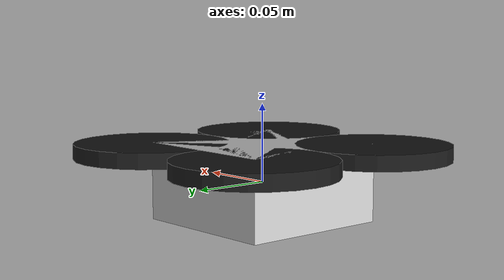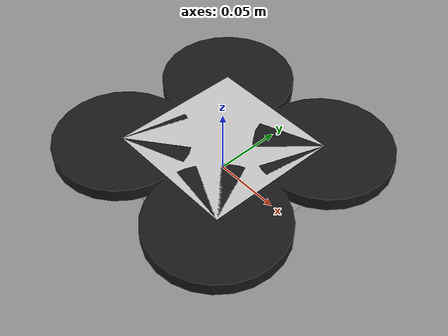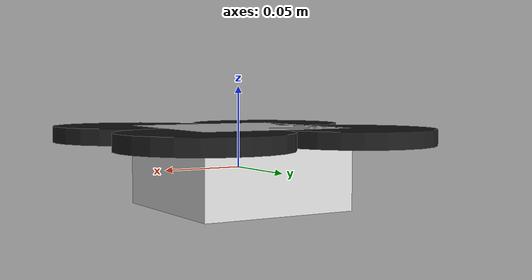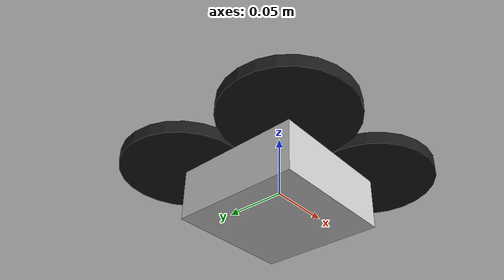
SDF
<?xml version='1.0'?>
<sdf version='1.8'>
  <model name='tello'>
    <!-- Base link (drone body) -->
    <link name='base_link'>
      <!-- Inertial properties (approximate Tello mass: 80g) -->
      <inertial>
        <mass>0.08</mass>
        <inertia>
          <ixx>0.001</ixx>
          <ixy>0</ixy>
          <ixz>0</ixz>
          <iyy>0.001</iyy>
          <iyz>0</iyz>
          <izz>0.001</izz>
        </inertia>
      </inertial>

      <!-- Collision geometry -->
      <collision name='base_collision'>
        <geometry>
          <box>
            <size>0.1 0.1 0.05</size>
          </box>
        </geometry>
      </collision>

      <!-- Visual geometry -->
      <visual name='base_visual'>
        <geometry>
          <box>
            <size>0.1 0.1 0.05</size> <!--use simple geometry first-->
          </box>
        </geometry>
        <material>
          <ambient>0.8 0.8 0.8 1</ambient>
          <diffuse>0.8 0.8 0.8 1</diffuse>
          <specular>0.5 0.5 0.5 1</specular>
        </material>
      </visual>

      <!-- Camera sensor (for inventory scanning) -->
      <sensor name='camera' type='camera'>
        <camera>
          <horizontal_fov>1.5708</horizontal_fov>
          <image>
            <width>640</width>
            <height>480</height>
            <format>R8G8B8</format>
          </image>
          <clip>
            <near>0.1</near>
            <far>100</far>
          </clip>
        </camera>
        <always_on>true</always_on>
        <update_rate>30</update_rate>
        <plugin name='camera_driver' filename='libgazebo_ros_camera.so'>
          <ros>
            <namespace>/tello</namespace>
          </ros>
          <camera_name>camera</camera_name>
          <frame_name>base_link</frame_name>
          <hack_baseline>0.07</hack_baseline>
        </plugin>
      </sensor>
    </link>

    <!-- Propellers (4 motors) -->
    <!--Front-left (CCW)-->
    <link name='propeller_1'>
      <pose>0.05 0.05 0.02 0 0 0</pose>
      <inertial>
        <mass>0.005</mass>
        <inertia>
          <ixx>0.00001</ixx>
          <ixy>0</ixy>
          <ixz>0</ixz>
          <iyy>0.00001</iyy>
          <iyz>0</iyz>
          <izz>0.00001</izz>
        </inertia>
      </inertial>
      <visual name='propeller_1_visual'>
        <geometry>
          <cylinder>
            <radius>0.05</radius>
            <length>0.01</length>
          </cylinder>
        </geometry>
        <material>
          <ambient>0.1 0.1 0.1 1</ambient>
        </material>
      </visual>
    </link>

    <!--Front-rigth (CW)-->
    <link name='propeller_2'>
      <pose>0.05 -0.05 0.02 0 0 0</pose>
      <inertial>
        <mass>0.005</mass>
        <inertia>
          <ixx>0.00001</ixx>
          <ixy>0</ixy>
          <ixz>0</ixz>
          <iyy>0.00001</iyy>
          <iyz>0</iyz>
          <izz>0.00001</izz>
        </inertia>
      </inertial>
      <visual name='propeller_2_visual'>
        <geometry>
          <cylinder>
            <radius>0.05</radius>
            <length>0.01</length>
          </cylinder>
        </geometry>
        <material>
          <ambient>0.1 0.1 0.1 1</ambient>
        </material>
      </visual>
    </link>

    <!--Back-left (CW)-->
    <link name='propeller_3'>
      <pose>-0.05 0.05 0.02 0 0 0</pose>
      <inertial>
        <mass>0.005</mass>
        <inertia>
          <ixx>0.00001</ixx>
          <ixy>0</ixy>
          <ixz>0</ixz>
          <iyy>0.00001</iyy>
          <iyz>0</iyz>
          <izz>0.00001</izz>
        </inertia>
      </inertial>
      <visual name='propeller_3_visual'>
        <geometry>
          <cylinder>
            <radius>0.05</radius>
            <length>0.01</length>
          </cylinder>
        </geometry>
        <material>
          <ambient>0.1 0.1 0.1 1</ambient>
        </material>
      </visual>
    </link>

    <!--Back-right (CCW)-->
    <link name='propeller_4'>
      <pose>-0.05 -0.05 0.02 0 0 0</pose>
      <inertial>
        <mass>0.005</mass>
        <inertia>
          <ixx>0.00001</ixx>
          <ixy>0</ixy>
          <ixz>0</ixz>
          <iyy>0.00001</iyy>
          <iyz>0</iyz>
          <izz>0.00001</izz>
        </inertia>
      </inertial>
      <visual name='propeller_4_visual'>
        <geometry>
          <cylinder>
            <radius>0.05</radius>
            <length>0.01</length>
          </cylinder>
        </geometry>
        <material>
          <ambient>0.1 0.1 0.1 1</ambient>
        </material>
      </visual>
    </link>

    <!-- Motor joints (revolute joints for spinning propellers) -->
    <joint name='motor_1' type='revolute'>
      <parent>base_link</parent>
      <child>propeller_1</child>
      <axis>
        <xyz>0 0 1</xyz>
        <limit>
          <lower>-1e9</lower>
          <upper>1e9</upper>
        </limit>
        <dynamics>
          <damping>0.001</damping>
        </dynamics>
      </axis>
    </joint>

    <joint name='motor_2' type='revolute'>
      <parent>base_link</parent>
      <child>propeller_2</child>
      <axis>
        <xyz>0 0 -1</xyz>
        <limit>
          <lower>-1e9</lower>
          <upper>1e9</upper>
        </limit>
        <dynamics>
          <damping>0.001</damping>
        </dynamics>
      </axis>
    </joint>

    <joint name='motor_3' type='revolute'>
      <parent>base_link</parent>
      <child>propeller_3</child>
      <axis>
        <xyz>0 0 -1</xyz>
        <limit>
          <lower>-1e9</lower>
          <upper>1e9</upper>
        </limit>
        <dynamics>
          <damping>0.001</damping>
        </dynamics>
      </axis>
    </joint>

    <joint name='motor_4' type='revolute'>
      <parent>base_link</parent>
      <child>propeller_4</child>
      <axis>
        <xyz>0 0 1</xyz>
        <limit>
          <lower>-1e9</lower>
          <upper>1e9</upper>
        </limit>
        <dynamics>
          <damping>0.001</damping>
        </dynamics>
      </axis>
    </joint>

    <!-- ROS control plugin -->
    <plugin name='gazebo_ros_control' filename='libgazebo_ros_control.so'>
      <robotNamespace>/tello</robotNamespace>
      <controlPeriod>0.001</controlPeriod>
    </plugin>
  </model>
</sdf>
